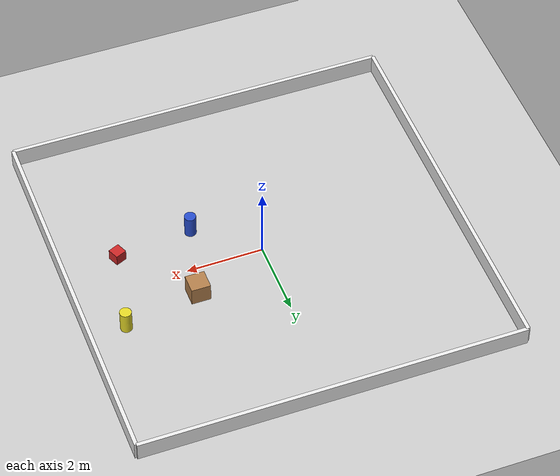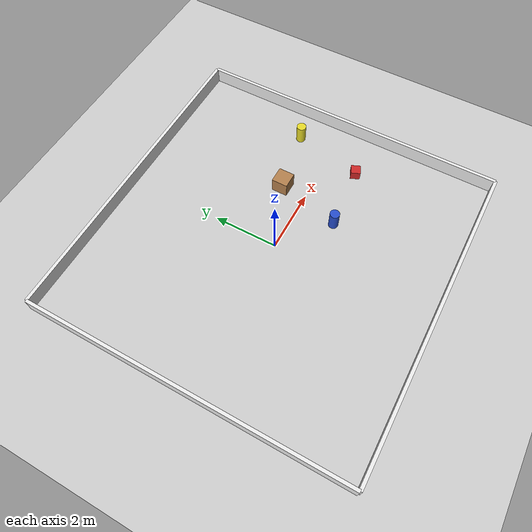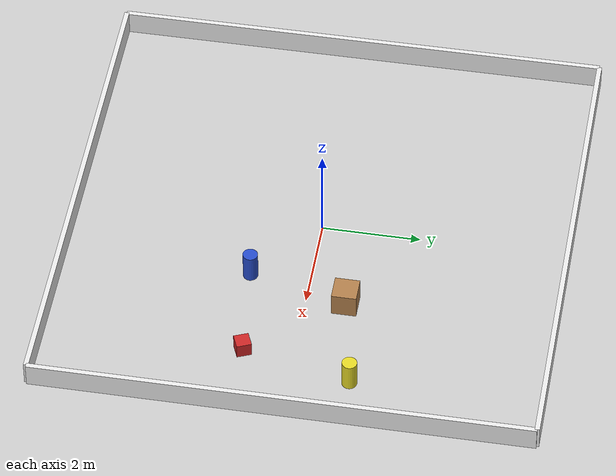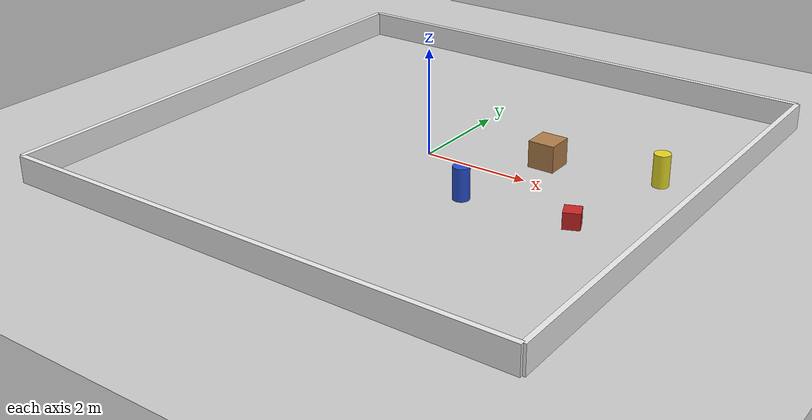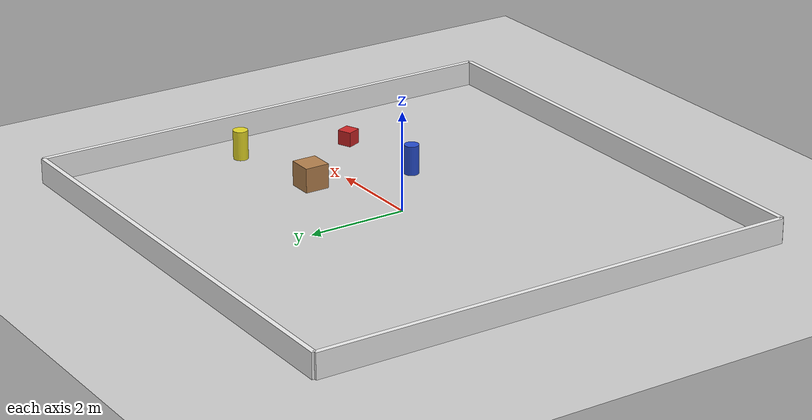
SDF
<?xml version="1.0" ?>
<!--
  R680 4WD 小车测试世界（Gazebo classic 11 / SDF 1.6）

  场景：平整地面 + 少量静态障碍物，围出简单“车道”用于：
  - 键盘遥控试驾
  - /car/scan 雷达数据验证
  - 后续 SLAM / 避障 / 无人机降落对接测试

  所有模型均为内联几何体，无需联网下载模型数据库。
-->
<sdf version="1.6">
  <world name="car_test">

    <physics type="ode">
      <max_step_size>0.001</max_step_size>
      <real_time_factor>1.0</real_time_factor>
      <real_time_update_rate>1000</real_time_update_rate>
    </physics>

    <scene>
      <ambient>0.4 0.4 0.4 1</ambient>
      <background>0.7 0.7 0.7 1</background>
      <shadows>true</shadows>
    </scene>

    <!-- ======================== 光照 ======================== -->
    <light name="sun" type="directional">
      <cast_shadows>true</cast_shadows>
      <pose>0 0 10 0 0 0</pose>
      <diffuse>0.8 0.8 0.8 1</diffuse>
      <specular>0.2 0.2 0.2 1</specular>
      <attenuation>
        <range>1000</range>
        <constant>0.9</constant>
        <linear>0.01</linear>
        <quadratic>0.001</quadratic>
      </attenuation>
      <direction>-0.5 0.1 -0.9</direction>
    </light>

    <!-- ======================== 地面 ======================== -->
    <model name="ground_plane">
      <static>true</static>
      <link name="link">
        <collision name="collision">
          <geometry>
            <plane>
              <normal>0 0 1</normal>
              <size>100 100</size>
            </plane>
          </geometry>
          <surface>
            <friction>
              <ode>
                <mu>1.0</mu>
                <mu2>1.0</mu2>
              </ode>
            </friction>
          </surface>
        </collision>
        <visual name="visual">
          <cast_shadows>false</cast_shadows>
          <geometry>
            <plane>
              <normal>0 0 1</normal>
              <size>100 100</size>
            </plane>
          </geometry>
          <material>
            <script>
              <uri>file://media/materials/scripts/gazebo.material</uri>
              <name>Gazebo/Grey</name>
            </script>
          </material>
        </visual>
      </link>
    </model>

    <!-- ======================== 障碍物：两个箱体 ======================== -->
    <model name="box_1">
      <static>true</static>
      <pose>2.0 0.8 0.25 0 0 0</pose>
      <link name="link">
        <collision name="collision">
          <geometry><box><size>0.5 0.5 0.5</size></box></geometry>
        </collision>
        <visual name="visual">
          <geometry><box><size>0.5 0.5 0.5</size></box></geometry>
          <material>
            <script>
              <uri>file://media/materials/scripts/gazebo.material</uri>
              <name>Gazebo/Wood</name>
            </script>
          </material>
        </visual>
      </link>
    </model>

    <model name="box_2">
      <static>true</static>
      <pose>3.5 -1.0 0.15 0 0 0.4</pose>
      <link name="link">
        <collision name="collision">
          <geometry><box><size>0.3 0.3 0.3</size></box></geometry>
        </collision>
        <visual name="visual">
          <geometry><box><size>0.3 0.3 0.3</size></box></geometry>
          <material>
            <script>
              <uri>file://media/materials/scripts/gazebo.material</uri>
              <name>Gazebo/Red</name>
            </script>
          </material>
        </visual>
      </link>
    </model>

    <!-- ======================== 障碍物：两个圆柱 ======================== -->
    <model name="cylinder_1">
      <static>true</static>
      <pose>1.5 -1.2 0.3 0 0 0</pose>
      <link name="link">
        <collision name="collision">
          <geometry><cylinder><radius>0.15</radius><length>0.6</length></cylinder></geometry>
        </collision>
        <visual name="visual">
          <geometry><cylinder><radius>0.15</radius><length>0.6</length></cylinder></geometry>
          <material>
            <script>
              <uri>file://media/materials/scripts/gazebo.material</uri>
              <name>Gazebo/Blue</name>
            </script>
          </material>
        </visual>
      </link>
    </model>

    <model name="cylinder_2">
      <static>true</static>
      <pose>4.0 1.2 0.3 0 0 0</pose>
      <link name="link">
        <collision name="collision">
          <geometry><cylinder><radius>0.15</radius><length>0.6</length></cylinder></geometry>
        </collision>
        <visual name="visual">
          <geometry><cylinder><radius>0.15</radius><length>0.6</length></cylinder></geometry>
          <material>
            <script>
              <uri>file://media/materials/scripts/gazebo.material</uri>
              <name>Gazebo/Yellow</name>
            </script>
          </material>
        </visual>
      </link>
    </model>

    <!-- ======================== 周界围墙（10 m x 10 m 场地） ======================== -->
    <model name="wall_north">
      <static>true</static>
      <pose>0 5.0 0.25 0 0 0</pose>
      <link name="link">
        <collision name="collision">
          <geometry><box><size>10.0 0.1 0.5</size></box></geometry>
        </collision>
        <visual name="visual">
          <geometry><box><size>10.0 0.1 0.5</size></box></geometry>
          <material>
            <script>
              <uri>file://media/materials/scripts/gazebo.material</uri>
              <name>Gazebo/White</name>
            </script>
          </material>
        </visual>
      </link>
    </model>

    <model name="wall_south">
      <static>true</static>
      <pose>0 -5.0 0.25 0 0 0</pose>
      <link name="link">
        <collision name="collision">
          <geometry><box><size>10.0 0.1 0.5</size></box></geometry>
        </collision>
        <visual name="visual">
          <geometry><box><size>10.0 0.1 0.5</size></box></geometry>
          <material>
            <script>
              <uri>file://media/materials/scripts/gazebo.material</uri>
              <name>Gazebo/White</name>
            </script>
          </material>
        </visual>
      </link>
    </model>

    <model name="wall_east">
      <static>true</static>
      <pose>5.0 0 0.25 0 0 0</pose>
      <link name="link">
        <collision name="collision">
          <geometry><box><size>0.1 10.0 0.5</size></box></geometry>
        </collision>
        <visual name="visual">
          <geometry><box><size>0.1 10.0 0.5</size></box></geometry>
          <material>
            <script>
              <uri>file://media/materials/scripts/gazebo.material</uri>
              <name>Gazebo/White</name>
            </script>
          </material>
        </visual>
      </link>
    </model>

    <model name="wall_west">
      <static>true</static>
      <pose>-5.0 0 0.25 0 0 0</pose>
      <link name="link">
        <collision name="collision">
          <geometry><box><size>0.1 10.0 0.5</size></box></geometry>
        </collision>
        <visual name="visual">
          <geometry><box><size>0.1 10.0 0.5</size></box></geometry>
          <material>
            <script>
              <uri>file://media/materials/scripts/gazebo.material</uri>
              <name>Gazebo/White</name>
            </script>
          </material>
        </visual>
      </link>
    </model>

  </world>
</sdf>
